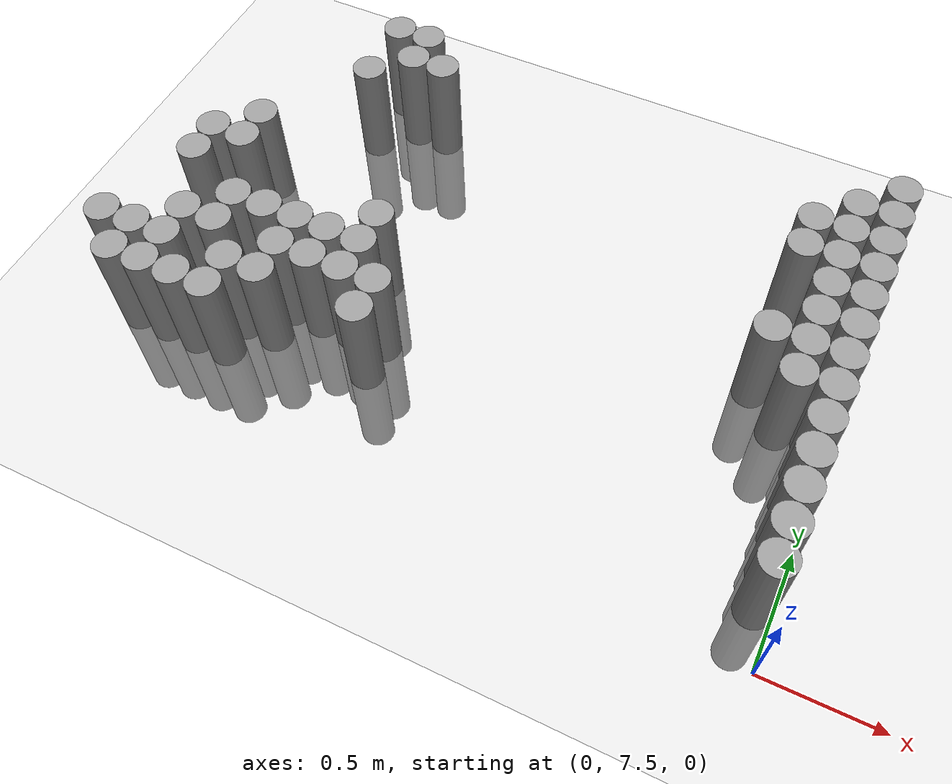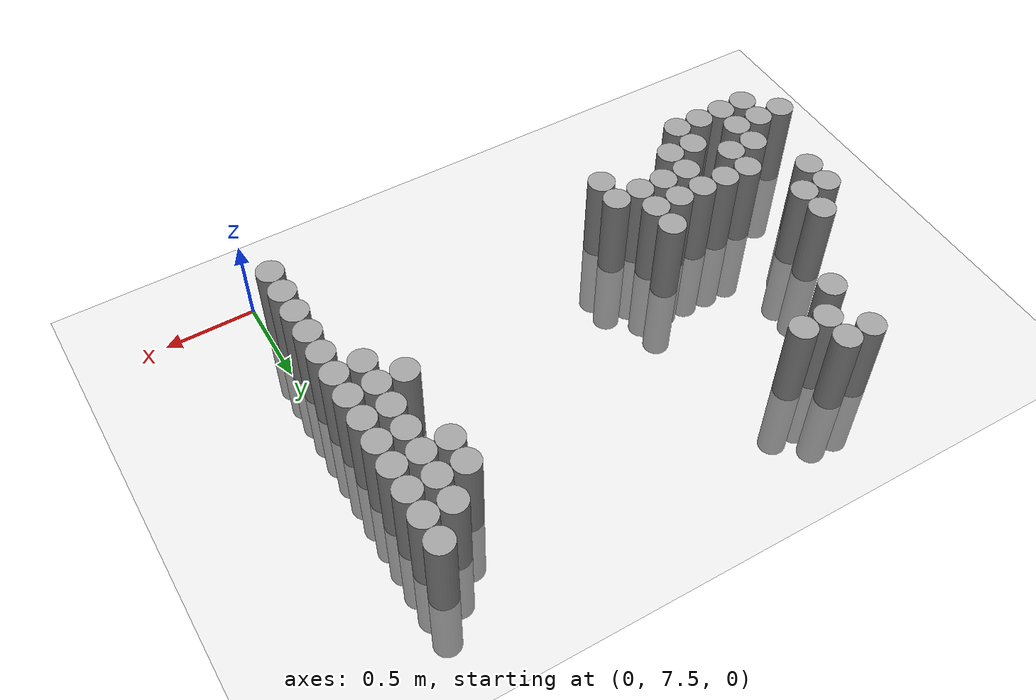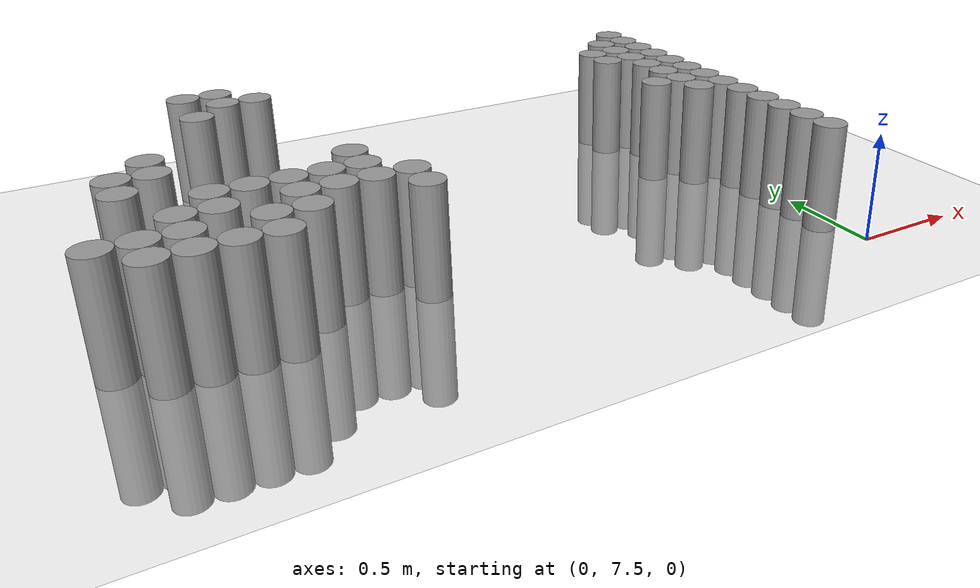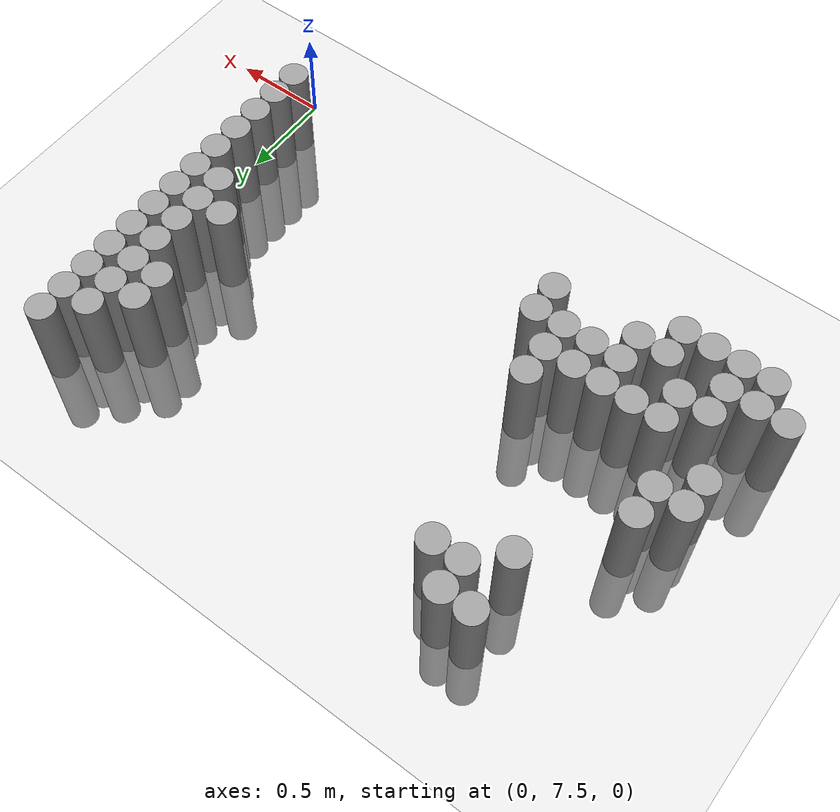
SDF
<sdf version="1.6">
 <world name="default">
  <model name="ground_plane">
   <static>1</static>
   <link name="link">
    <collision name="collision">
     <geometry><plane><normal>0 0 1</normal><size>100 100</size></plane></geometry>
     <surface><friction><ode><mu>100</mu><mu2>50</mu2></ode></friction></surface>
    </collision>
    <visual name="visual">
     <cast_shadows>0</cast_shadows>
     <geometry><plane><normal>0 0 1</normal><size>100 100</size></plane></geometry>
     <material>
      <script><uri>file://media/materials/scripts/gazebo.material</uri><name>Gazebo/Grey</name></script>
     </material>
    </visual>
   </link>
  </model>
  <model name="unit_cylinder_162">
   <pose>-3.075000 8.025000 0.000000 0.000000 0.000000 0.000000</pose>
   <link name="link">
    <inertial>
     <mass>1</mass>
     <inertia><ixx>0.145833</ixx><ixy>0</ixy><ixz>0</ixz><iyy>0.145833</iyy><iyz>0</iyz><izz>0.125</izz></inertia>
    </inertial>
    <collision name="collision">
     <geometry><cylinder><radius>0.075000</radius><length>1</length></cylinder></geometry>
    </collision>
    <visual name="visual">
     <geometry><cylinder><radius>0.075000</radius><length>1</length></cylinder></geometry>
     <material>
      <script><name>Gazebo/Grey</name><uri>file://media/materials/scripts/gazebo.material</uri></script>
     </material>
    </visual>
   </link>
  </model>
  <model name="unit_cylinder_165">
   <pose>-2.925000 7.875000 0.000000 0.000000 0.000000 0.000000</pose>
   <link name="link">
    <inertial>
     <mass>1</mass>
     <inertia><ixx>0.145833</ixx><ixy>0</ixy><ixz>0</ixz><iyy>0.145833</iyy><iyz>0</iyz><izz>0.125</izz></inertia>
    </inertial>
    <collision name="collision">
     <geometry><cylinder><radius>0.075000</radius><length>1</length></cylinder></geometry>
    </collision>
    <visual name="visual">
     <geometry><cylinder><radius>0.075000</radius><length>1</length></cylinder></geometry>
     <material>
      <script><name>Gazebo/Grey</name><uri>file://media/materials/scripts/gazebo.material</uri></script>
     </material>
    </visual>
   </link>
  </model>
  <model name="unit_cylinder_166">
   <pose>-2.925000 8.025000 0.000000 0.000000 0.000000 0.000000</pose>
   <link name="link">
    <inertial>
     <mass>1</mass>
     <inertia><ixx>0.145833</ixx><ixy>0</ixy><ixz>0</ixz><iyy>0.145833</iyy><iyz>0</iyz><izz>0.125</izz></inertia>
    </inertial>
    <collision name="collision">
     <geometry><cylinder><radius>0.075000</radius><length>1</length></cylinder></geometry>
    </collision>
    <visual name="visual">
     <geometry><cylinder><radius>0.075000</radius><length>1</length></cylinder></geometry>
     <material>
      <script><name>Gazebo/Grey</name><uri>file://media/materials/scripts/gazebo.material</uri></script>
     </material>
    </visual>
   </link>
  </model>
  <model name="unit_cylinder_167">
   <pose>-2.925000 8.475000 0.000000 0.000000 0.000000 0.000000</pose>
   <link name="link">
    <inertial>
     <mass>1</mass>
     <inertia><ixx>0.145833</ixx><ixy>0</ixy><ixz>0</ixz><iyy>0.145833</iyy><iyz>0</iyz><izz>0.125</izz></inertia>
    </inertial>
    <collision name="collision">
     <geometry><cylinder><radius>0.075000</radius><length>1</length></cylinder></geometry>
    </collision>
    <visual name="visual">
     <geometry><cylinder><radius>0.075000</radius><length>1</length></cylinder></geometry>
     <material>
      <script><name>Gazebo/Grey</name><uri>file://media/materials/scripts/gazebo.material</uri></script>
     </material>
    </visual>
   </link>
  </model>
  <model name="unit_cylinder_168">
   <pose>-2.925000 8.625000 0.000000 0.000000 0.000000 0.000000</pose>
   <link name="link">
    <inertial>
     <mass>1</mass>
     <inertia><ixx>0.145833</ixx><ixy>0</ixy><ixz>0</ixz><iyy>0.145833</iyy><iyz>0</iyz><izz>0.125</izz></inertia>
    </inertial>
    <collision name="collision">
     <geometry><cylinder><radius>0.075000</radius><length>1</length></cylinder></geometry>
    </collision>
    <visual name="visual">
     <geometry><cylinder><radius>0.075000</radius><length>1</length></cylinder></geometry>
     <material>
      <script><name>Gazebo/Grey</name><uri>file://media/materials/scripts/gazebo.material</uri></script>
     </material>
    </visual>
   </link>
  </model>
  <model name="unit_cylinder_171">
   <pose>-2.775000 7.875000 0.000000 0.000000 0.000000 0.000000</pose>
   <link name="link">
    <inertial>
     <mass>1</mass>
     <inertia><ixx>0.145833</ixx><ixy>0</ixy><ixz>0</ixz><iyy>0.145833</iyy><iyz>0</iyz><izz>0.125</izz></inertia>
    </inertial>
    <collision name="collision">
     <geometry><cylinder><radius>0.075000</radius><length>1</length></cylinder></geometry>
    </collision>
    <visual name="visual">
     <geometry><cylinder><radius>0.075000</radius><length>1</length></cylinder></geometry>
     <material>
      <script><name>Gazebo/Grey</name><uri>file://media/materials/scripts/gazebo.material</uri></script>
     </material>
    </visual>
   </link>
  </model>
  <model name="unit_cylinder_172">
   <pose>-2.775000 8.025000 0.000000 0.000000 0.000000 0.000000</pose>
   <link name="link">
    <inertial>
     <mass>1</mass>
     <inertia><ixx>0.145833</ixx><ixy>0</ixy><ixz>0</ixz><iyy>0.145833</iyy><iyz>0</iyz><izz>0.125</izz></inertia>
    </inertial>
    <collision name="collision">
     <geometry><cylinder><radius>0.075000</radius><length>1</length></cylinder></geometry>
    </collision>
    <visual name="visual">
     <geometry><cylinder><radius>0.075000</radius><length>1</length></cylinder></geometry>
     <material>
      <script><name>Gazebo/Grey</name><uri>file://media/materials/scripts/gazebo.material</uri></script>
     </material>
    </visual>
   </link>
  </model>
  <model name="unit_cylinder_173">
   <pose>-2.775000 8.175000 0.000000 0.000000 0.000000 0.000000</pose>
   <link name="link">
    <inertial>
     <mass>1</mass>
     <inertia><ixx>0.145833</ixx><ixy>0</ixy><ixz>0</ixz><iyy>0.145833</iyy><iyz>0</iyz><izz>0.125</izz></inertia>
    </inertial>
    <collision name="collision">
     <geometry><cylinder><radius>0.075000</radius><length>1</length></cylinder></geometry>
    </collision>
    <visual name="visual">
     <geometry><cylinder><radius>0.075000</radius><length>1</length></cylinder></geometry>
     <material>
      <script><name>Gazebo/Grey</name><uri>file://media/materials/scripts/gazebo.material</uri></script>
     </material>
    </visual>
   </link>
  </model>
  <model name="unit_cylinder_174">
   <pose>-2.775000 8.625000 0.000000 0.000000 0.000000 0.000000</pose>
   <link name="link">
    <inertial>
     <mass>1</mass>
     <inertia><ixx>0.145833</ixx><ixy>0</ixy><ixz>0</ixz><iyy>0.145833</iyy><iyz>0</iyz><izz>0.125</izz></inertia>
    </inertial>
    <collision name="collision">
     <geometry><cylinder><radius>0.075000</radius><length>1</length></cylinder></geometry>
    </collision>
    <visual name="visual">
     <geometry><cylinder><radius>0.075000</radius><length>1</length></cylinder></geometry>
     <material>
      <script><name>Gazebo/Grey</name><uri>file://media/materials/scripts/gazebo.material</uri></script>
     </material>
    </visual>
   </link>
  </model>
  <model name="unit_cylinder_175">
   <pose>-2.775000 8.775000 0.000000 0.000000 0.000000 0.000000</pose>
   <link name="link">
    <inertial>
     <mass>1</mass>
     <inertia><ixx>0.145833</ixx><ixy>0</ixy><ixz>0</ixz><iyy>0.145833</iyy><iyz>0</iyz><izz>0.125</izz></inertia>
    </inertial>
    <collision name="collision">
     <geometry><cylinder><radius>0.075000</radius><length>1</length></cylinder></geometry>
    </collision>
    <visual name="visual">
     <geometry><cylinder><radius>0.075000</radius><length>1</length></cylinder></geometry>
     <material>
      <script><name>Gazebo/Grey</name><uri>file://media/materials/scripts/gazebo.material</uri></script>
     </material>
    </visual>
   </link>
  </model>
  <model name="unit_cylinder_177">
   <pose>-2.625000 7.875000 0.000000 0.000000 0.000000 0.000000</pose>
   <link name="link">
    <inertial>
     <mass>1</mass>
     <inertia><ixx>0.145833</ixx><ixy>0</ixy><ixz>0</ixz><iyy>0.145833</iyy><iyz>0</iyz><izz>0.125</izz></inertia>
    </inertial>
    <collision name="collision">
     <geometry><cylinder><radius>0.075000</radius><length>1</length></cylinder></geometry>
    </collision>
    <visual name="visual">
     <geometry><cylinder><radius>0.075000</radius><length>1</length></cylinder></geometry>
     <material>
      <script><name>Gazebo/Grey</name><uri>file://media/materials/scripts/gazebo.material</uri></script>
     </material>
    </visual>
   </link>
  </model>
  <model name="unit_cylinder_178">
   <pose>-2.625000 8.175000 0.000000 0.000000 0.000000 0.000000</pose>
   <link name="link">
    <inertial>
     <mass>1</mass>
     <inertia><ixx>0.145833</ixx><ixy>0</ixy><ixz>0</ixz><iyy>0.145833</iyy><iyz>0</iyz><izz>0.125</izz></inertia>
    </inertial>
    <collision name="collision">
     <geometry><cylinder><radius>0.075000</radius><length>1</length></cylinder></geometry>
    </collision>
    <visual name="visual">
     <geometry><cylinder><radius>0.075000</radius><length>1</length></cylinder></geometry>
     <material>
      <script><name>Gazebo/Grey</name><uri>file://media/materials/scripts/gazebo.material</uri></script>
     </material>
    </visual>
   </link>
  </model>
  <model name="unit_cylinder_179">
   <pose>-2.625000 8.325000 0.000000 0.000000 0.000000 0.000000</pose>
   <link name="link">
    <inertial>
     <mass>1</mass>
     <inertia><ixx>0.145833</ixx><ixy>0</ixy><ixz>0</ixz><iyy>0.145833</iyy><iyz>0</iyz><izz>0.125</izz></inertia>
    </inertial>
    <collision name="collision">
     <geometry><cylinder><radius>0.075000</radius><length>1</length></cylinder></geometry>
    </collision>
    <visual name="visual">
     <geometry><cylinder><radius>0.075000</radius><length>1</length></cylinder></geometry>
     <material>
      <script><name>Gazebo/Grey</name><uri>file://media/materials/scripts/gazebo.material</uri></script>
     </material>
    </visual>
   </link>
  </model>
  <model name="unit_cylinder_180">
   <pose>-2.475000 7.875000 0.000000 0.000000 0.000000 0.000000</pose>
   <link name="link">
    <inertial>
     <mass>1</mass>
     <inertia><ixx>0.145833</ixx><ixy>0</ixy><ixz>0</ixz><iyy>0.145833</iyy><iyz>0</iyz><izz>0.125</izz></inertia>
    </inertial>
    <collision name="collision">
     <geometry><cylinder><radius>0.075000</radius><length>1</length></cylinder></geometry>
    </collision>
    <visual name="visual">
     <geometry><cylinder><radius>0.075000</radius><length>1</length></cylinder></geometry>
     <material>
      <script><name>Gazebo/Grey</name><uri>file://media/materials/scripts/gazebo.material</uri></script>
     </material>
    </visual>
   </link>
  </model>
  <model name="unit_cylinder_181">
   <pose>-2.475000 8.025000 0.000000 0.000000 0.000000 0.000000</pose>
   <link name="link">
    <inertial>
     <mass>1</mass>
     <inertia><ixx>0.145833</ixx><ixy>0</ixy><ixz>0</ixz><iyy>0.145833</iyy><iyz>0</iyz><izz>0.125</izz></inertia>
    </inertial>
    <collision name="collision">
     <geometry><cylinder><radius>0.075000</radius><length>1</length></cylinder></geometry>
    </collision>
    <visual name="visual">
     <geometry><cylinder><radius>0.075000</radius><length>1</length></cylinder></geometry>
     <material>
      <script><name>Gazebo/Grey</name><uri>file://media/materials/scripts/gazebo.material</uri></script>
     </material>
    </visual>
   </link>
  </model>
  <model name="unit_cylinder_182">
   <pose>-2.475000 8.325000 0.000000 0.000000 0.000000 0.000000</pose>
   <link name="link">
    <inertial>
     <mass>1</mass>
     <inertia><ixx>0.145833</ixx><ixy>0</ixy><ixz>0</ixz><iyy>0.145833</iyy><iyz>0</iyz><izz>0.125</izz></inertia>
    </inertial>
    <collision name="collision">
     <geometry><cylinder><radius>0.075000</radius><length>1</length></cylinder></geometry>
    </collision>
    <visual name="visual">
     <geometry><cylinder><radius>0.075000</radius><length>1</length></cylinder></geometry>
     <material>
      <script><name>Gazebo/Grey</name><uri>file://media/materials/scripts/gazebo.material</uri></script>
     </material>
    </visual>
   </link>
  </model>
  <model name="unit_cylinder_183">
   <pose>-2.475000 9.225000 0.000000 0.000000 0.000000 0.000000</pose>
   <link name="link">
    <inertial>
     <mass>1</mass>
     <inertia><ixx>0.145833</ixx><ixy>0</ixy><ixz>0</ixz><iyy>0.145833</iyy><iyz>0</iyz><izz>0.125</izz></inertia>
    </inertial>
    <collision name="collision">
     <geometry><cylinder><radius>0.075000</radius><length>1</length></cylinder></geometry>
    </collision>
    <visual name="visual">
     <geometry><cylinder><radius>0.075000</radius><length>1</length></cylinder></geometry>
     <material>
      <script><name>Gazebo/Grey</name><uri>file://media/materials/scripts/gazebo.material</uri></script>
     </material>
    </visual>
   </link>
  </model>
  <model name="unit_cylinder_184">
   <pose>-2.475000 9.525000 0.000000 0.000000 0.000000 0.000000</pose>
   <link name="link">
    <inertial>
     <mass>1</mass>
     <inertia><ixx>0.145833</ixx><ixy>0</ixy><ixz>0</ixz><iyy>0.145833</iyy><iyz>0</iyz><izz>0.125</izz></inertia>
    </inertial>
    <collision name="collision">
     <geometry><cylinder><radius>0.075000</radius><length>1</length></cylinder></geometry>
    </collision>
    <visual name="visual">
     <geometry><cylinder><radius>0.075000</radius><length>1</length></cylinder></geometry>
     <material>
      <script><name>Gazebo/Grey</name><uri>file://media/materials/scripts/gazebo.material</uri></script>
     </material>
    </visual>
   </link>
  </model>
  <model name="unit_cylinder_185">
   <pose>-2.325000 8.025000 0.000000 0.000000 0.000000 0.000000</pose>
   <link name="link">
    <inertial>
     <mass>1</mass>
     <inertia><ixx>0.145833</ixx><ixy>0</ixy><ixz>0</ixz><iyy>0.145833</iyy><iyz>0</iyz><izz>0.125</izz></inertia>
    </inertial>
    <collision name="collision">
     <geometry><cylinder><radius>0.075000</radius><length>1</length></cylinder></geometry>
    </collision>
    <visual name="visual">
     <geometry><cylinder><radius>0.075000</radius><length>1</length></cylinder></geometry>
     <material>
      <script><name>Gazebo/Grey</name><uri>file://media/materials/scripts/gazebo.material</uri></script>
     </material>
    </visual>
   </link>
  </model>
  <model name="unit_cylinder_186">
   <pose>-2.325000 8.175000 0.000000 0.000000 0.000000 0.000000</pose>
   <link name="link">
    <inertial>
     <mass>1</mass>
     <inertia><ixx>0.145833</ixx><ixy>0</ixy><ixz>0</ixz><iyy>0.145833</iyy><iyz>0</iyz><izz>0.125</izz></inertia>
    </inertial>
    <collision name="collision">
     <geometry><cylinder><radius>0.075000</radius><length>1</length></cylinder></geometry>
    </collision>
    <visual name="visual">
     <geometry><cylinder><radius>0.075000</radius><length>1</length></cylinder></geometry>
     <material>
      <script><name>Gazebo/Grey</name><uri>file://media/materials/scripts/gazebo.material</uri></script>
     </material>
    </visual>
   </link>
  </model>
  <model name="unit_cylinder_187">
   <pose>-2.325000 8.325000 0.000000 0.000000 0.000000 0.000000</pose>
   <link name="link">
    <inertial>
     <mass>1</mass>
     <inertia><ixx>0.145833</ixx><ixy>0</ixy><ixz>0</ixz><iyy>0.145833</iyy><iyz>0</iyz><izz>0.125</izz></inertia>
    </inertial>
    <collision name="collision">
     <geometry><cylinder><radius>0.075000</radius><length>1</length></cylinder></geometry>
    </collision>
    <visual name="visual">
     <geometry><cylinder><radius>0.075000</radius><length>1</length></cylinder></geometry>
     <material>
      <script><name>Gazebo/Grey</name><uri>file://media/materials/scripts/gazebo.material</uri></script>
     </material>
    </visual>
   </link>
  </model>
  <model name="unit_cylinder_188">
   <pose>-2.325000 9.375000 0.000000 0.000000 0.000000 0.000000</pose>
   <link name="link">
    <inertial>
     <mass>1</mass>
     <inertia><ixx>0.145833</ixx><ixy>0</ixy><ixz>0</ixz><iyy>0.145833</iyy><iyz>0</iyz><izz>0.125</izz></inertia>
    </inertial>
    <collision name="collision">
     <geometry><cylinder><radius>0.075000</radius><length>1</length></cylinder></geometry>
    </collision>
    <visual name="visual">
     <geometry><cylinder><radius>0.075000</radius><length>1</length></cylinder></geometry>
     <material>
      <script><name>Gazebo/Grey</name><uri>file://media/materials/scripts/gazebo.material</uri></script>
     </material>
    </visual>
   </link>
  </model>
  <model name="unit_cylinder_189">
   <pose>-2.325000 9.525000 0.000000 0.000000 0.000000 0.000000</pose>
   <link name="link">
    <inertial>
     <mass>1</mass>
     <inertia><ixx>0.145833</ixx><ixy>0</ixy><ixz>0</ixz><iyy>0.145833</iyy><iyz>0</iyz><izz>0.125</izz></inertia>
    </inertial>
    <collision name="collision">
     <geometry><cylinder><radius>0.075000</radius><length>1</length></cylinder></geometry>
    </collision>
    <visual name="visual">
     <geometry><cylinder><radius>0.075000</radius><length>1</length></cylinder></geometry>
     <material>
      <script><name>Gazebo/Grey</name><uri>file://media/materials/scripts/gazebo.material</uri></script>
     </material>
    </visual>
   </link>
  </model>
  <model name="unit_cylinder_190">
   <pose>-2.175000 8.175000 0.000000 0.000000 0.000000 0.000000</pose>
   <link name="link">
    <inertial>
     <mass>1</mass>
     <inertia><ixx>0.145833</ixx><ixy>0</ixy><ixz>0</ixz><iyy>0.145833</iyy><iyz>0</iyz><izz>0.125</izz></inertia>
    </inertial>
    <collision name="collision">
     <geometry><cylinder><radius>0.075000</radius><length>1</length></cylinder></geometry>
    </collision>
    <visual name="visual">
     <geometry><cylinder><radius>0.075000</radius><length>1</length></cylinder></geometry>
     <material>
      <script><name>Gazebo/Grey</name><uri>file://media/materials/scripts/gazebo.material</uri></script>
     </material>
    </visual>
   </link>
  </model>
  <model name="unit_cylinder_191">
   <pose>-2.175000 8.325000 0.000000 0.000000 0.000000 0.000000</pose>
   <link name="link">
    <inertial>
     <mass>1</mass>
     <inertia><ixx>0.145833</ixx><ixy>0</ixy><ixz>0</ixz><iyy>0.145833</iyy><iyz>0</iyz><izz>0.125</izz></inertia>
    </inertial>
    <collision name="collision">
     <geometry><cylinder><radius>0.075000</radius><length>1</length></cylinder></geometry>
    </collision>
    <visual name="visual">
     <geometry><cylinder><radius>0.075000</radius><length>1</length></cylinder></geometry>
     <material>
      <script><name>Gazebo/Grey</name><uri>file://media/materials/scripts/gazebo.material</uri></script>
     </material>
    </visual>
   </link>
  </model>
  <model name="unit_cylinder_192">
   <pose>-2.175000 9.375000 0.000000 0.000000 0.000000 0.000000</pose>
   <link name="link">
    <inertial>
     <mass>1</mass>
     <inertia><ixx>0.145833</ixx><ixy>0</ixy><ixz>0</ixz><iyy>0.145833</iyy><iyz>0</iyz><izz>0.125</izz></inertia>
    </inertial>
    <collision name="collision">
     <geometry><cylinder><radius>0.075000</radius><length>1</length></cylinder></geometry>
    </collision>
    <visual name="visual">
     <geometry><cylinder><radius>0.075000</radius><length>1</length></cylinder></geometry>
     <material>
      <script><name>Gazebo/Grey</name><uri>file://media/materials/scripts/gazebo.material</uri></script>
     </material>
    </visual>
   </link>
  </model>
  <model name="unit_cylinder_193">
   <pose>-2.025000 8.175000 0.000000 0.000000 0.000000 0.000000</pose>
   <link name="link">
    <inertial>
     <mass>1</mass>
     <inertia><ixx>0.145833</ixx><ixy>0</ixy><ixz>0</ixz><iyy>0.145833</iyy><iyz>0</iyz><izz>0.125</izz></inertia>
    </inertial>
    <collision name="collision">
     <geometry><cylinder><radius>0.075000</radius><length>1</length></cylinder></geometry>
    </collision>
    <visual name="visual">
     <geometry><cylinder><radius>0.075000</radius><length>1</length></cylinder></geometry>
     <material>
      <script><name>Gazebo/Grey</name><uri>file://media/materials/scripts/gazebo.material</uri></script>
     </material>
    </visual>
   </link>
  </model>
  <model name="unit_cylinder_194">
   <pose>-2.025000 8.325000 0.000000 0.000000 0.000000 0.000000</pose>
   <link name="link">
    <inertial>
     <mass>1</mass>
     <inertia><ixx>0.145833</ixx><ixy>0</ixy><ixz>0</ixz><iyy>0.145833</iyy><iyz>0</iyz><izz>0.125</izz></inertia>
    </inertial>
    <collision name="collision">
     <geometry><cylinder><radius>0.075000</radius><length>1</length></cylinder></geometry>
    </collision>
    <visual name="visual">
     <geometry><cylinder><radius>0.075000</radius><length>1</length></cylinder></geometry>
     <material>
      <script><name>Gazebo/Grey</name><uri>file://media/materials/scripts/gazebo.material</uri></script>
     </material>
    </visual>
   </link>
  </model>
  <model name="unit_cylinder_195">
   <pose>-2.025000 8.475000 0.000000 0.000000 0.000000 0.000000</pose>
   <link name="link">
    <inertial>
     <mass>1</mass>
     <inertia><ixx>0.145833</ixx><ixy>0</ixy><ixz>0</ixz><iyy>0.145833</iyy><iyz>0</iyz><izz>0.125</izz></inertia>
    </inertial>
    <collision name="collision">
     <geometry><cylinder><radius>0.075000</radius><length>1</length></cylinder></geometry>
    </collision>
    <visual name="visual">
     <geometry><cylinder><radius>0.075000</radius><length>1</length></cylinder></geometry>
     <material>
      <script><name>Gazebo/Grey</name><uri>file://media/materials/scripts/gazebo.material</uri></script>
     </material>
    </visual>
   </link>
  </model>
  <model name="unit_cylinder_199">
   <pose>-1.875000 8.025000 0.000000 0.000000 0.000000 0.000000</pose>
   <link name="link">
    <inertial>
     <mass>1</mass>
     <inertia><ixx>0.145833</ixx><ixy>0</ixy><ixz>0</ixz><iyy>0.145833</iyy><iyz>0</iyz><izz>0.125</izz></inertia>
    </inertial>
    <collision name="collision">
     <geometry><cylinder><radius>0.075000</radius><length>1</length></cylinder></geometry>
    </collision>
    <visual name="visual">
     <geometry><cylinder><radius>0.075000</radius><length>1</length></cylinder></geometry>
     <material>
      <script><name>Gazebo/Grey</name><uri>file://media/materials/scripts/gazebo.material</uri></script>
     </material>
    </visual>
   </link>
  </model>
  <model name="unit_cylinder_200">
   <pose>-1.875000 8.175000 0.000000 0.000000 0.000000 0.000000</pose>
   <link name="link">
    <inertial>
     <mass>1</mass>
     <inertia><ixx>0.145833</ixx><ixy>0</ixy><ixz>0</ixz><iyy>0.145833</iyy><iyz>0</iyz><izz>0.125</izz></inertia>
    </inertial>
    <collision name="collision">
     <geometry><cylinder><radius>0.075000</radius><length>1</length></cylinder></geometry>
    </collision>
    <visual name="visual">
     <geometry><cylinder><radius>0.075000</radius><length>1</length></cylinder></geometry>
     <material>
      <script><name>Gazebo/Grey</name><uri>file://media/materials/scripts/gazebo.material</uri></script>
     </material>
    </visual>
   </link>
  </model>
  <model name="unit_cylinder_224">
   <pose>-0.375000 8.625000 0.000000 0.000000 0.000000 0.000000</pose>
   <link name="link">
    <inertial>
     <mass>1</mass>
     <inertia><ixx>0.145833</ixx><ixy>0</ixy><ixz>0</ixz><iyy>0.145833</iyy><iyz>0</iyz><izz>0.125</izz></inertia>
    </inertial>
    <collision name="collision">
     <geometry><cylinder><radius>0.075000</radius><length>1</length></cylinder></geometry>
    </collision>
    <visual name="visual">
     <geometry><cylinder><radius>0.075000</radius><length>1</length></cylinder></geometry>
     <material>
      <script><name>Gazebo/Grey</name><uri>file://media/materials/scripts/gazebo.material</uri></script>
     </material>
    </visual>
   </link>
  </model>
  <model name="unit_cylinder_225">
   <pose>-0.375000 9.075000 0.000000 0.000000 0.000000 0.000000</pose>
   <link name="link">
    <inertial>
     <mass>1</mass>
     <inertia><ixx>0.145833</ixx><ixy>0</ixy><ixz>0</ixz><iyy>0.145833</iyy><iyz>0</iyz><izz>0.125</izz></inertia>
    </inertial>
    <collision name="collision">
     <geometry><cylinder><radius>0.075000</radius><length>1</length></cylinder></geometry>
    </collision>
    <visual name="visual">
     <geometry><cylinder><radius>0.075000</radius><length>1</length></cylinder></geometry>
     <material>
      <script><name>Gazebo/Grey</name><uri>file://media/materials/scripts/gazebo.material</uri></script>
     </material>
    </visual>
   </link>
  </model>
  <model name="unit_cylinder_226">
   <pose>-0.375000 9.225000 0.000000 0.000000 0.000000 0.000000</pose>
   <link name="link">
    <inertial>
     <mass>1</mass>
     <inertia><ixx>0.145833</ixx><ixy>0</ixy><ixz>0</ixz><iyy>0.145833</iyy><iyz>0</iyz><izz>0.125</izz></inertia>
    </inertial>
    <collision name="collision">
     <geometry><cylinder><radius>0.075000</radius><length>1</length></cylinder></geometry>
    </collision>
    <visual name="visual">
     <geometry><cylinder><radius>0.075000</radius><length>1</length></cylinder></geometry>
     <material>
      <script><name>Gazebo/Grey</name><uri>file://media/materials/scripts/gazebo.material</uri></script>
     </material>
    </visual>
   </link>
  </model>
  <model name="unit_cylinder_232">
   <pose>-0.225000 8.475000 0.000000 0.000000 0.000000 0.000000</pose>
   <link name="link">
    <inertial>
     <mass>1</mass>
     <inertia><ixx>0.145833</ixx><ixy>0</ixy><ixz>0</ixz><iyy>0.145833</iyy><iyz>0</iyz><izz>0.125</izz></inertia>
    </inertial>
    <collision name="collision">
     <geometry><cylinder><radius>0.075000</radius><length>1</length></cylinder></geometry>
    </collision>
    <visual name="visual">
     <geometry><cylinder><radius>0.075000</radius><length>1</length></cylinder></geometry>
     <material>
      <script><name>Gazebo/Grey</name><uri>file://media/materials/scripts/gazebo.material</uri></script>
     </material>
    </visual>
   </link>
  </model>
  <model name="unit_cylinder_233">
   <pose>-0.225000 8.625000 0.000000 0.000000 0.000000 0.000000</pose>
   <link name="link">
    <inertial>
     <mass>1</mass>
     <inertia><ixx>0.145833</ixx><ixy>0</ixy><ixz>0</ixz><iyy>0.145833</iyy><iyz>0</iyz><izz>0.125</izz></inertia>
    </inertial>
    <collision name="collision">
     <geometry><cylinder><radius>0.075000</radius><length>1</length></cylinder></geometry>
    </collision>
    <visual name="visual">
     <geometry><cylinder><radius>0.075000</radius><length>1</length></cylinder></geometry>
     <material>
      <script><name>Gazebo/Grey</name><uri>file://media/materials/scripts/gazebo.material</uri></script>
     </material>
    </visual>
   </link>
  </model>
  <model name="unit_cylinder_234">
   <pose>-0.225000 8.775000 0.000000 0.000000 0.000000 0.000000</pose>
   <link name="link">
    <inertial>
     <mass>1</mass>
     <inertia><ixx>0.145833</ixx><ixy>0</ixy><ixz>0</ixz><iyy>0.145833</iyy><iyz>0</iyz><izz>0.125</izz></inertia>
    </inertial>
    <collision name="collision">
     <geometry><cylinder><radius>0.075000</radius><length>1</length></cylinder></geometry>
    </collision>
    <visual name="visual">
     <geometry><cylinder><radius>0.075000</radius><length>1</length></cylinder></geometry>
     <material>
      <script><name>Gazebo/Grey</name><uri>file://media/materials/scripts/gazebo.material</uri></script>
     </material>
    </visual>
   </link>
  </model>
  <model name="unit_cylinder_235">
   <pose>-0.225000 8.925000 0.000000 0.000000 0.000000 0.000000</pose>
   <link name="link">
    <inertial>
     <mass>1</mass>
     <inertia><ixx>0.145833</ixx><ixy>0</ixy><ixz>0</ixz><iyy>0.145833</iyy><iyz>0</iyz><izz>0.125</izz></inertia>
    </inertial>
    <collision name="collision">
     <geometry><cylinder><radius>0.075000</radius><length>1</length></cylinder></geometry>
    </collision>
    <visual name="visual">
     <geometry><cylinder><radius>0.075000</radius><length>1</length></cylinder></geometry>
     <material>
      <script><name>Gazebo/Grey</name><uri>file://media/materials/scripts/gazebo.material</uri></script>
     </material>
    </visual>
   </link>
  </model>
  <model name="unit_cylinder_236">
   <pose>-0.225000 9.075000 0.000000 0.000000 0.000000 0.000000</pose>
   <link name="link">
    <inertial>
     <mass>1</mass>
     <inertia><ixx>0.145833</ixx><ixy>0</ixy><ixz>0</ixz><iyy>0.145833</iyy><iyz>0</iyz><izz>0.125</izz></inertia>
    </inertial>
    <collision name="collision">
     <geometry><cylinder><radius>0.075000</radius><length>1</length></cylinder></geometry>
    </collision>
    <visual name="visual">
     <geometry><cylinder><radius>0.075000</radius><length>1</length></cylinder></geometry>
     <material>
      <script><name>Gazebo/Grey</name><uri>file://media/materials/scripts/gazebo.material</uri></script>
     </material>
    </visual>
   </link>
  </model>
  <model name="unit_cylinder_237">
   <pose>-0.225000 9.225000 0.000000 0.000000 0.000000 0.000000</pose>
   <link name="link">
    <inertial>
     <mass>1</mass>
     <inertia><ixx>0.145833</ixx><ixy>0</ixy><ixz>0</ixz><iyy>0.145833</iyy><iyz>0</iyz><izz>0.125</izz></inertia>
    </inertial>
    <collision name="collision">
     <geometry><cylinder><radius>0.075000</radius><length>1</length></cylinder></geometry>
    </collision>
    <visual name="visual">
     <geometry><cylinder><radius>0.075000</radius><length>1</length></cylinder></geometry>
     <material>
      <script><name>Gazebo/Grey</name><uri>file://media/materials/scripts/gazebo.material</uri></script>
     </material>
    </visual>
   </link>
  </model>
  <model name="unit_cylinder_238">
   <pose>-0.225000 9.375000 0.000000 0.000000 0.000000 0.000000</pose>
   <link name="link">
    <inertial>
     <mass>1</mass>
     <inertia><ixx>0.145833</ixx><ixy>0</ixy><ixz>0</ixz><iyy>0.145833</iyy><iyz>0</iyz><izz>0.125</izz></inertia>
    </inertial>
    <collision name="collision">
     <geometry><cylinder><radius>0.075000</radius><length>1</length></cylinder></geometry>
    </collision>
    <visual name="visual">
     <geometry><cylinder><radius>0.075000</radius><length>1</length></cylinder></geometry>
     <material>
      <script><name>Gazebo/Grey</name><uri>file://media/materials/scripts/gazebo.material</uri></script>
     </material>
    </visual>
   </link>
  </model>
  <model name="unit_cylinder_256">
   <pose>-0.075000 7.725000 0.000000 0.000000 0.000000 0.000000</pose>
   <link name="link">
    <inertial>
     <mass>1</mass>
     <inertia><ixx>0.145833</ixx><ixy>0</ixy><ixz>0</ixz><iyy>0.145833</iyy><iyz>0</iyz><izz>0.125</izz></inertia>
    </inertial>
    <collision name="collision">
     <geometry><cylinder><radius>0.075000</radius><length>1</length></cylinder></geometry>
    </collision>
    <visual name="visual">
     <geometry><cylinder><radius>0.075000</radius><length>1</length></cylinder></geometry>
     <material>
      <script><name>Gazebo/Grey</name><uri>file://media/materials/scripts/gazebo.material</uri></script>
     </material>
    </visual>
   </link>
  </model>
  <model name="unit_cylinder_257">
   <pose>-0.075000 7.875000 0.000000 0.000000 0.000000 0.000000</pose>
   <link name="link">
    <inertial>
     <mass>1</mass>
     <inertia><ixx>0.145833</ixx><ixy>0</ixy><ixz>0</ixz><iyy>0.145833</iyy><iyz>0</iyz><izz>0.125</izz></inertia>
    </inertial>
    <collision name="collision">
     <geometry><cylinder><radius>0.075000</radius><length>1</length></cylinder></geometry>
    </collision>
    <visual name="visual">
     <geometry><cylinder><radius>0.075000</radius><length>1</length></cylinder></geometry>
     <material>
      <script><name>Gazebo/Grey</name><uri>file://media/materials/scripts/gazebo.material</uri></script>
     </material>
    </visual>
   </link>
  </model>
  <model name="unit_cylinder_258">
   <pose>-0.075000 8.025000 0.000000 0.000000 0.000000 0.000000</pose>
   <link name="link">
    <inertial>
     <mass>1</mass>
     <inertia><ixx>0.145833</ixx><ixy>0</ixy><ixz>0</ixz><iyy>0.145833</iyy><iyz>0</iyz><izz>0.125</izz></inertia>
    </inertial>
    <collision name="collision">
     <geometry><cylinder><radius>0.075000</radius><length>1</length></cylinder></geometry>
    </collision>
    <visual name="visual">
     <geometry><cylinder><radius>0.075000</radius><length>1</length></cylinder></geometry>
     <material>
      <script><name>Gazebo/Grey</name><uri>file://media/materials/scripts/gazebo.material</uri></script>
     </material>
    </visual>
   </link>
  </model>
  <model name="unit_cylinder_259">
   <pose>-0.075000 8.175000 0.000000 0.000000 0.000000 0.000000</pose>
   <link name="link">
    <inertial>
     <mass>1</mass>
     <inertia><ixx>0.145833</ixx><ixy>0</ixy><ixz>0</ixz><iyy>0.145833</iyy><iyz>0</iyz><izz>0.125</izz></inertia>
    </inertial>
    <collision name="collision">
     <geometry><cylinder><radius>0.075000</radius><length>1</length></cylinder></geometry>
    </collision>
    <visual name="visual">
     <geometry><cylinder><radius>0.075000</radius><length>1</length></cylinder></geometry>
     <material>
      <script><name>Gazebo/Grey</name><uri>file://media/materials/scripts/gazebo.material</uri></script>
     </material>
    </visual>
   </link>
  </model>
  <model name="unit_cylinder_260">
   <pose>-0.075000 8.325000 0.000000 0.000000 0.000000 0.000000</pose>
   <link name="link">
    <inertial>
     <mass>1</mass>
     <inertia><ixx>0.145833</ixx><ixy>0</ixy><ixz>0</ixz><iyy>0.145833</iyy><iyz>0</iyz><izz>0.125</izz></inertia>
    </inertial>
    <collision name="collision">
     <geometry><cylinder><radius>0.075000</radius><length>1</length></cylinder></geometry>
    </collision>
    <visual name="visual">
     <geometry><cylinder><radius>0.075000</radius><length>1</length></cylinder></geometry>
     <material>
      <script><name>Gazebo/Grey</name><uri>file://media/materials/scripts/gazebo.material</uri></script>
     </material>
    </visual>
   </link>
  </model>
  <model name="unit_cylinder_261">
   <pose>-0.075000 8.475000 0.000000 0.000000 0.000000 0.000000</pose>
   <link name="link">
    <inertial>
     <mass>1</mass>
     <inertia><ixx>0.145833</ixx><ixy>0</ixy><ixz>0</ixz><iyy>0.145833</iyy><iyz>0</iyz><izz>0.125</izz></inertia>
    </inertial>
    <collision name="collision">
     <geometry><cylinder><radius>0.075000</radius><length>1</length></cylinder></geometry>
    </collision>
    <visual name="visual">
     <geometry><cylinder><radius>0.075000</radius><length>1</length></cylinder></geometry>
     <material>
      <script><name>Gazebo/Grey</name><uri>file://media/materials/scripts/gazebo.material</uri></script>
     </material>
    </visual>
   </link>
  </model>
  <model name="unit_cylinder_262">
   <pose>-0.075000 8.625000 0.000000 0.000000 0.000000 0.000000</pose>
   <link name="link">
    <inertial>
     <mass>1</mass>
     <inertia><ixx>0.145833</ixx><ixy>0</ixy><ixz>0</ixz><iyy>0.145833</iyy><iyz>0</iyz><izz>0.125</izz></inertia>
    </inertial>
    <collision name="collision">
     <geometry><cylinder><radius>0.075000</radius><length>1</length></cylinder></geometry>
    </collision>
    <visual name="visual">
     <geometry><cylinder><radius>0.075000</radius><length>1</length></cylinder></geometry>
     <material>
      <script><name>Gazebo/Grey</name><uri>file://media/materials/scripts/gazebo.material</uri></script>
     </material>
    </visual>
   </link>
  </model>
  <model name="unit_cylinder_263">
   <pose>-0.075000 8.775000 0.000000 0.000000 0.000000 0.000000</pose>
   <link name="link">
    <inertial>
     <mass>1</mass>
     <inertia><ixx>0.145833</ixx><ixy>0</ixy><ixz>0</ixz><iyy>0.145833</iyy><iyz>0</iyz><izz>0.125</izz></inertia>
    </inertial>
    <collision name="collision">
     <geometry><cylinder><radius>0.075000</radius><length>1</length></cylinder></geometry>
    </collision>
    <visual name="visual">
     <geometry><cylinder><radius>0.075000</radius><length>1</length></cylinder></geometry>
     <material>
      <script><name>Gazebo/Grey</name><uri>file://media/materials/scripts/gazebo.material</uri></script>
     </material>
    </visual>
   </link>
  </model>
  <model name="unit_cylinder_264">
   <pose>-0.075000 8.925000 0.000000 0.000000 0.000000 0.000000</pose>
   <link name="link">
    <inertial>
     <mass>1</mass>
     <inertia><ixx>0.145833</ixx><ixy>0</ixy><ixz>0</ixz><iyy>0.145833</iyy><iyz>0</iyz><izz>0.125</izz></inertia>
    </inertial>
    <collision name="collision">
     <geometry><cylinder><radius>0.075000</radius><length>1</length></cylinder></geometry>
    </collision>
    <visual name="visual">
     <geometry><cylinder><radius>0.075000</radius><length>1</length></cylinder></geometry>
     <material>
      <script><name>Gazebo/Grey</name><uri>file://media/materials/scripts/gazebo.material</uri></script>
     </material>
    </visual>
   </link>
  </model>
  <model name="unit_cylinder_265">
   <pose>-0.075000 9.075000 0.000000 0.000000 0.000000 0.000000</pose>
   <link name="link">
    <inertial>
     <mass>1</mass>
     <inertia><ixx>0.145833</ixx><ixy>0</ixy><ixz>0</ixz><iyy>0.145833</iyy><iyz>0</iyz><izz>0.125</izz></inertia>
    </inertial>
    <collision name="collision">
     <geometry><cylinder><radius>0.075000</radius><length>1</length></cylinder></geometry>
    </collision>
    <visual name="visual">
     <geometry><cylinder><radius>0.075000</radius><length>1</length></cylinder></geometry>
     <material>
      <script><name>Gazebo/Grey</name><uri>file://media/materials/scripts/gazebo.material</uri></script>
     </material>
    </visual>
   </link>
  </model>
  <model name="unit_cylinder_266">
   <pose>-0.075000 9.225000 0.000000 0.000000 0.000000 0.000000</pose>
   <link name="link">
    <inertial>
     <mass>1</mass>
     <inertia><ixx>0.145833</ixx><ixy>0</ixy><ixz>0</ixz><iyy>0.145833</iyy><iyz>0</iyz><izz>0.125</izz></inertia>
    </inertial>
    <collision name="collision">
     <geometry><cylinder><radius>0.075000</radius><length>1</length></cylinder></geometry>
    </collision>
    <visual name="visual">
     <geometry><cylinder><radius>0.075000</radius><length>1</length></cylinder></geometry>
     <material>
      <script><name>Gazebo/Grey</name><uri>file://media/materials/scripts/gazebo.material</uri></script>
     </material>
    </visual>
   </link>
  </model>
  <model name="unit_cylinder_267">
   <pose>-0.075000 9.375000 0.000000 0.000000 0.000000 0.000000</pose>
   <link name="link">
    <inertial>
     <mass>1</mass>
     <inertia><ixx>0.145833</ixx><ixy>0</ixy><ixz>0</ixz><iyy>0.145833</iyy><iyz>0</iyz><izz>0.125</izz></inertia>
    </inertial>
    <collision name="collision">
     <geometry><cylinder><radius>0.075000</radius><length>1</length></cylinder></geometry>
    </collision>
    <visual name="visual">
     <geometry><cylinder><radius>0.075000</radius><length>1</length></cylinder></geometry>
     <material>
      <script><name>Gazebo/Grey</name><uri>file://media/materials/scripts/gazebo.material</uri></script>
     </material>
    </visual>
   </link>
  </model>
  <model name="unit_cylinder_268">
   <pose>-0.075000 9.525000 0.000000 0.000000 0.000000 0.000000</pose>
   <link name="link">
    <inertial>
     <mass>1</mass>
     <inertia><ixx>0.145833</ixx><ixy>0</ixy><ixz>0</ixz><iyy>0.145833</iyy><iyz>0</iyz><izz>0.125</izz></inertia>
    </inertial>
    <collision name="collision">
     <geometry><cylinder><radius>0.075000</radius><length>1</length></cylinder></geometry>
    </collision>
    <visual name="visual">
     <geometry><cylinder><radius>0.075000</radius><length>1</length></cylinder></geometry>
     <material>
      <script><name>Gazebo/Grey</name><uri>file://media/materials/scripts/gazebo.material</uri></script>
     </material>
    </visual>
   </link>
  </model>
 </world>
</sdf>
